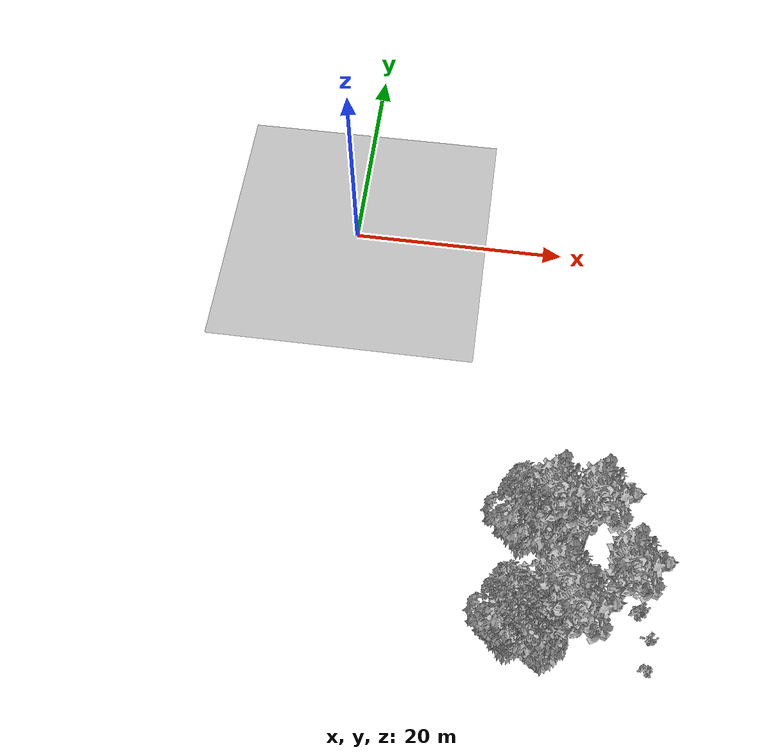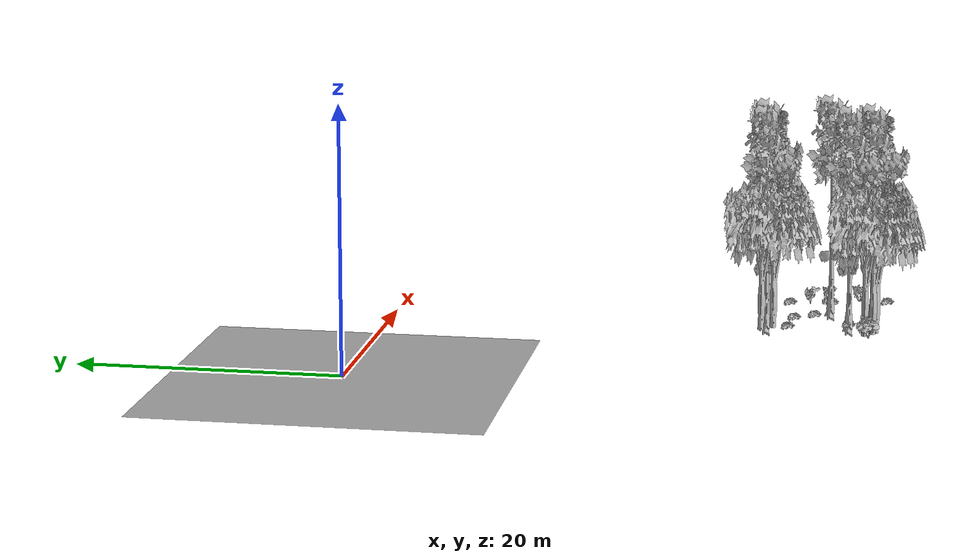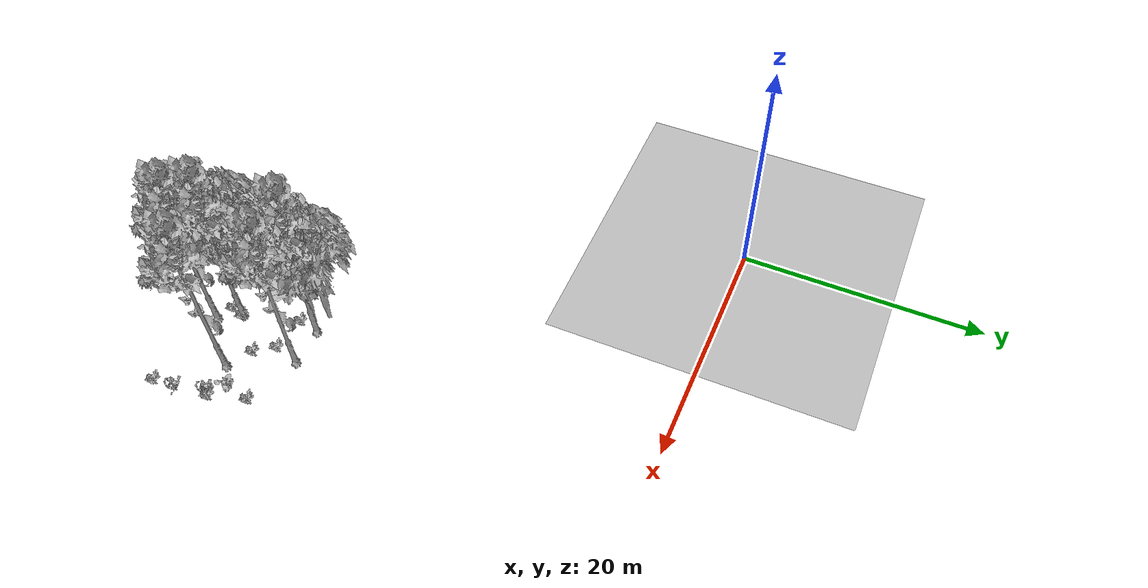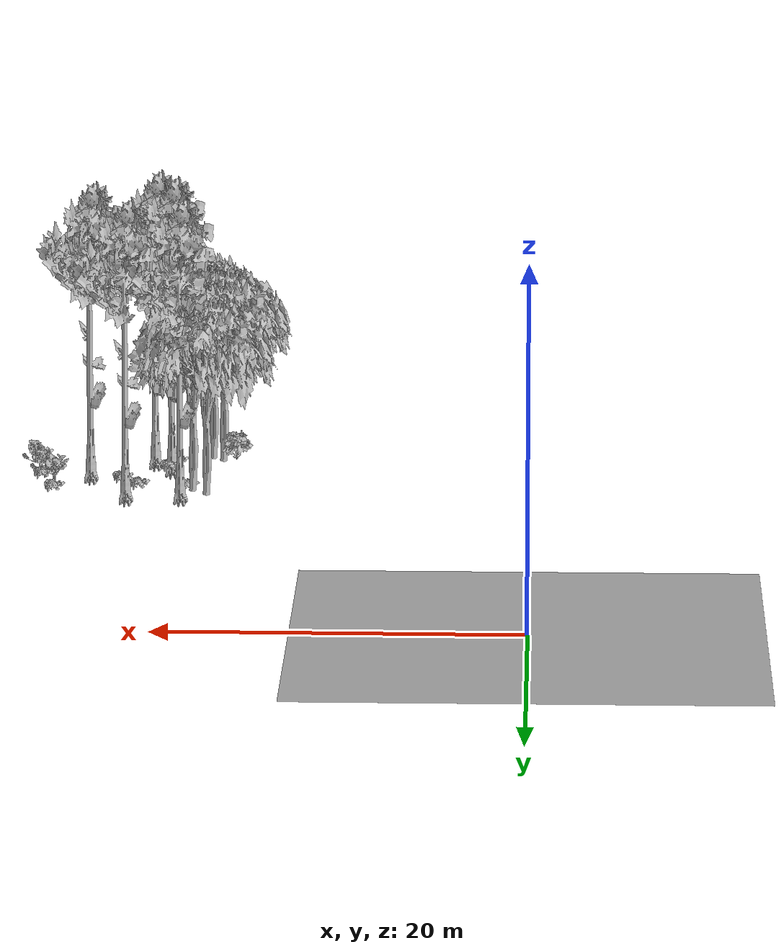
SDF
<sdf version="1.7">
 <world name="default">
  <model name="ground_plane">
   <static>1</static>
   <link name="link">
    <collision name="collision">
     <pose>-50 0 0 0 -0 0</pose>
     <geometry><plane><normal>0 0 1</normal><size>80 80</size></plane></geometry>
     <surface><contact><ode><min_depth>0.01</min_depth><max_vel>0</max_vel></ode></contact></surface>
    </collision>
    <visual name="grass">
     <cast_shadows>0</cast_shadows>
     <geometry>
      <mesh>
       <scale>0.46714285714285714 0.46714285714285714 0.1</scale>
       <uri>file://grass_plane/meshes/grass_plane.dae</uri>
      </mesh>
     </geometry>
    </visual>
   </link>
  </model>
  <model name="Tree 131">
   <static>1</static>
   <pose>19.009118860500323 -37.71711879742022 0 1.57079 -0 0</pose>
   <link name="link">
    <collision name="collision">
     <geometry><mesh><scale>3.5 5 3.5</scale><uri>model://tree_2/meshes/tree_2.obj</uri></mesh></geometry>
    </collision>
    <visual name="visual">
     <geometry><mesh><scale>3.5 5 3.5</scale><uri>model://tree_2/meshes/tree_2.obj</uri></mesh></geometry>
    </visual>
   </link>
  </model>
  <model name="Tree 229">
   <static>1</static>
   <pose>18.024292342299574 -36.868564622129085 0 1.57079 -0 0</pose>
   <link name="link">
    <collision name="collision">
     <geometry><mesh><scale>3.5 5 3.5</scale><uri>model://tree_2/meshes/tree_2.obj</uri></mesh></geometry>
    </collision>
    <visual name="visual">
     <geometry><mesh><scale>3.5 5 3.5</scale><uri>model://tree_2/meshes/tree_2.obj</uri></mesh></geometry>
    </visual>
   </link>
  </model>
  <model name="Tree 320">
   <static>1</static>
   <pose>22.170030867844645 -37.30925109798108 0 1.57079 -0 0</pose>
   <link name="link">
    <collision name="collision">
     <geometry><mesh><scale>3.5 5 3.5</scale><uri>model://tree_9/meshes/tree_9.obj</uri></mesh></geometry>
    </collision>
    <visual name="visual">
     <geometry><mesh><scale>3.5 5 3.5</scale><uri>model://tree_9/meshes/tree_9.obj</uri></mesh></geometry>
    </visual>
   </link>
  </model>
  <model name="Tree 354">
   <static>1</static>
   <pose>18.65060220463201 -37.48211680037204 0 1.57079 -0 0</pose>
   <link name="link">
    <collision name="collision">
     <geometry><mesh><scale>3.5 5 3.5</scale><uri>model://tree_2/meshes/tree_2.obj</uri></mesh></geometry>
    </collision>
    <visual name="visual">
     <geometry><mesh><scale>3.5 5 3.5</scale><uri>model://tree_2/meshes/tree_2.obj</uri></mesh></geometry>
    </visual>
   </link>
  </model>
  <model name="Tree 383">
   <static>1</static>
   <pose>23.35162478008793 -29.137372768428538 0 1.57079 -0 0</pose>
   <link name="link">
    <collision name="collision">
     <geometry><mesh><scale>3.5 5 3.5</scale><uri>model://tree_9/meshes/tree_9.obj</uri></mesh></geometry>
    </collision>
    <visual name="visual">
     <geometry><mesh><scale>3.5 5 3.5</scale><uri>model://tree_9/meshes/tree_9.obj</uri></mesh></geometry>
    </visual>
   </link>
  </model>
  <model name="Tree 410">
   <static>1</static>
   <pose>25.739872598180042 -33.955549318932945 0 1.57079 -0 0</pose>
   <link name="link">
    <collision name="collision">
     <geometry><mesh><scale>3.5 5 3.5</scale><uri>model://tree_9/meshes/tree_9.obj</uri></mesh></geometry>
    </collision>
    <visual name="visual">
     <geometry><mesh><scale>3.5 5 3.5</scale><uri>model://tree_9/meshes/tree_9.obj</uri></mesh></geometry>
    </visual>
   </link>
  </model>
  <model name="Tree 448">
   <static>1</static>
   <pose>21.097547230040618 -35.56200457009841 0 1.57079 -0 0</pose>
   <link name="link">
    <collision name="collision">
     <geometry><mesh><scale>3.5 5 3.5</scale><uri>model://tree_9/meshes/tree_9.obj</uri></mesh></geometry>
    </collision>
    <visual name="visual">
     <geometry><mesh><scale>3.5 5 3.5</scale><uri>model://tree_9/meshes/tree_9.obj</uri></mesh></geometry>
    </visual>
   </link>
  </model>
  <model name="Tree 455">
   <static>1</static>
   <pose>18.568866267251558 -28.93235875440255 0 1.57079 -0 0</pose>
   <link name="link">
    <collision name="collision">
     <geometry><mesh><scale>3.5 5 3.5</scale><uri>model://tree_2/meshes/tree_2.obj</uri></mesh></geometry>
    </collision>
    <visual name="visual">
     <geometry><mesh><scale>3.5 5 3.5</scale><uri>model://tree_2/meshes/tree_2.obj</uri></mesh></geometry>
    </visual>
   </link>
  </model>
  <model name="Tree 494">
   <static>1</static>
   <pose>19.408090523086052 -29.80874349477631 0 1.57079 -0 0</pose>
   <link name="link">
    <collision name="collision">
     <geometry><mesh><scale>3.5 5 3.5</scale><uri>model://tree_2/meshes/tree_2.obj</uri></mesh></geometry>
    </collision>
    <visual name="visual">
     <geometry><mesh><scale>3.5 5 3.5</scale><uri>model://tree_2/meshes/tree_2.obj</uri></mesh></geometry>
    </visual>
   </link>
  </model>
  <model name="Tree 618">
   <static>1</static>
   <pose>20.20600178090195 -29.205778051489794 0 1.57079 -0 0</pose>
   <link name="link">
    <collision name="collision">
     <geometry><mesh><scale>3.5 5 3.5</scale><uri>model://tree_9/meshes/tree_9.obj</uri></mesh></geometry>
    </collision>
    <visual name="visual">
     <geometry><mesh><scale>3.5 5 3.5</scale><uri>model://tree_9/meshes/tree_9.obj</uri></mesh></geometry>
    </visual>
   </link>
  </model>
  <model name="Bush 29">
   <static>1</static>
   <pose>27.722938741730687 -32.264396907055335 0 1.57079 -0 0</pose>
   <link name="link">
    <collision name="collision">
     <geometry><mesh><scale>2 2 2</scale><uri>model://bush_0/meshes/bush_0.obj</uri></mesh></geometry>
     <surface><contact><collide_without_contact>false</collide_without_contact></contact></surface>
    </collision>
    <visual name="visual">
     <geometry><mesh><scale>2 2 2</scale><uri>model://bush_0/meshes/bush_0.obj</uri></mesh></geometry>
    </visual>
   </link>
  </model>
  <model name="Bush 104">
   <static>1</static>
   <pose>29.132533881266113 -36.13234946968849 0 1.57079 -0 0</pose>
   <link name="link">
    <collision name="collision">
     <geometry><mesh><scale>2 2 2</scale><uri>model://bush_4/meshes/bush_4.obj</uri></mesh></geometry>
     <surface><contact><collide_without_contact>false</collide_without_contact></contact></surface>
    </collision>
    <visual name="visual">
     <geometry><mesh><scale>2 2 2</scale><uri>model://bush_4/meshes/bush_4.obj</uri></mesh></geometry>
    </visual>
   </link>
  </model>
  <model name="Bush 197">
   <static>1</static>
   <pose>19.860875948991747 -30.9304310078388 0 1.57079 -0 0</pose>
   <link name="link">
    <collision name="collision">
     <geometry><mesh><scale>2 2 2</scale><uri>model://bush_2/meshes/bush_2.obj</uri></mesh></geometry>
     <surface><contact><collide_without_contact>false</collide_without_contact></contact></surface>
    </collision>
    <visual name="visual">
     <geometry><mesh><scale>2 2 2</scale><uri>model://bush_2/meshes/bush_2.obj</uri></mesh></geometry>
    </visual>
   </link>
  </model>
  <model name="Bush 213">
   <static>1</static>
   <pose>17.370534315942614 -37.212950210798255 0 1.57079 -0 0</pose>
   <link name="link">
    <collision name="collision">
     <geometry><mesh><scale>2 2 2</scale><uri>model://bush_1/meshes/bush_1.obj</uri></mesh></geometry>
     <surface><contact><collide_without_contact>false</collide_without_contact></contact></surface>
    </collision>
    <visual name="visual">
     <geometry><mesh><scale>2 2 2</scale><uri>model://bush_1/meshes/bush_1.obj</uri></mesh></geometry>
    </visual>
   </link>
  </model>
  <model name="Bush 275">
   <static>1</static>
   <pose>27.649184055856068 -30.669260713010054 0 1.57079 -0 0</pose>
   <link name="link">
    <collision name="collision">
     <geometry><mesh><scale>2 2 2</scale><uri>model://bush_2/meshes/bush_2.obj</uri></mesh></geometry>
     <surface><contact><collide_without_contact>false</collide_without_contact></contact></surface>
    </collision>
    <visual name="visual">
     <geometry><mesh><scale>2 2 2</scale><uri>model://bush_2/meshes/bush_2.obj</uri></mesh></geometry>
    </visual>
   </link>
  </model>
  <model name="Bush 328">
   <static>1</static>
   <pose>20.83777376318858 -36.693956068956474 0 1.57079 -0 0</pose>
   <link name="link">
    <collision name="collision">
     <geometry><mesh><scale>2 2 2</scale><uri>model://bush_2/meshes/bush_2.obj</uri></mesh></geometry>
     <surface><contact><collide_without_contact>false</collide_without_contact></contact></surface>
    </collision>
    <visual name="visual">
     <geometry><mesh><scale>2 2 2</scale><uri>model://bush_2/meshes/bush_2.obj</uri></mesh></geometry>
    </visual>
   </link>
  </model>
  <model name="Bush 379">
   <static>1</static>
   <pose>22.741987252610656 -31.265393918216464 0 1.57079 -0 0</pose>
   <link name="link">
    <collision name="collision">
     <geometry><mesh><scale>2 2 2</scale><uri>model://bush_2/meshes/bush_2.obj</uri></mesh></geometry>
     <surface><contact><collide_without_contact>false</collide_without_contact></contact></surface>
    </collision>
    <visual name="visual">
     <geometry><mesh><scale>2 2 2</scale><uri>model://bush_2/meshes/bush_2.obj</uri></mesh></geometry>
    </visual>
   </link>
  </model>
  <model name="Bush 418">
   <static>1</static>
   <pose>28.46389623721757 -33.76505857269402 0 1.57079 -0 0</pose>
   <link name="link">
    <collision name="collision">
     <geometry><mesh><scale>2 2 2</scale><uri>model://bush_4/meshes/bush_4.obj</uri></mesh></geometry>
     <surface><contact><collide_without_contact>false</collide_without_contact></contact></surface>
    </collision>
    <visual name="visual">
     <geometry><mesh><scale>2 2 2</scale><uri>model://bush_4/meshes/bush_4.obj</uri></mesh></geometry>
    </visual>
   </link>
  </model>
  <model name="Bush 427">
   <static>1</static>
   <pose>28.950921172922648 -38.35522408049556 0 1.57079 -0 0</pose>
   <link name="link">
    <collision name="collision">
     <geometry><mesh><scale>2 2 2</scale><uri>model://bush_2/meshes/bush_2.obj</uri></mesh></geometry>
     <surface><contact><collide_without_contact>false</collide_without_contact></contact></surface>
    </collision>
    <visual name="visual">
     <geometry><mesh><scale>2 2 2</scale><uri>model://bush_2/meshes/bush_2.obj</uri></mesh></geometry>
    </visual>
   </link>
  </model>
  <model name="Bush 536">
   <static>1</static>
   <pose>23.81847844634101 -32.8067060197432 0 1.57079 -0 0</pose>
   <link name="link">
    <collision name="collision">
     <geometry><mesh><scale>2 2 2</scale><uri>model://bush_2/meshes/bush_2.obj</uri></mesh></geometry>
     <surface><contact><collide_without_contact>false</collide_without_contact></contact></surface>
    </collision>
    <visual name="visual">
     <geometry><mesh><scale>2 2 2</scale><uri>model://bush_2/meshes/bush_2.obj</uri></mesh></geometry>
    </visual>
   </link>
  </model>
  <model name="Bush 552">
   <static>1</static>
   <pose>28.532267488341645 -33.67867309760474 0 1.57079 -0 0</pose>
   <link name="link">
    <collision name="collision">
     <geometry><mesh><scale>2 2 2</scale><uri>model://bush_2/meshes/bush_2.obj</uri></mesh></geometry>
     <surface><contact><collide_without_contact>false</collide_without_contact></contact></surface>
    </collision>
    <visual name="visual">
     <geometry><mesh><scale>2 2 2</scale><uri>model://bush_2/meshes/bush_2.obj</uri></mesh></geometry>
    </visual>
   </link>
  </model>
  <model name="Bush 623">
   <static>1</static>
   <pose>28.122499663058008 -33.997485198315616 0 1.57079 -0 0</pose>
   <link name="link">
    <collision name="collision">
     <geometry><mesh><scale>2 2 2</scale><uri>model://bush_2/meshes/bush_2.obj</uri></mesh></geometry>
     <surface><contact><collide_without_contact>false</collide_without_contact></contact></surface>
    </collision>
    <visual name="visual">
     <geometry><mesh><scale>2 2 2</scale><uri>model://bush_2/meshes/bush_2.obj</uri></mesh></geometry>
    </visual>
   </link>
  </model>
  <model name="Bush 627">
   <static>1</static>
   <pose>21.211709566670052 -35.57635043465019 0 1.57079 -0 0</pose>
   <link name="link">
    <collision name="collision">
     <geometry><mesh><scale>2 2 2</scale><uri>model://bush_2/meshes/bush_2.obj</uri></mesh></geometry>
     <surface><contact><collide_without_contact>false</collide_without_contact></contact></surface>
    </collision>
    <visual name="visual">
     <geometry><mesh><scale>2 2 2</scale><uri>model://bush_2/meshes/bush_2.obj</uri></mesh></geometry>
    </visual>
   </link>
  </model>
 </world>
</sdf>
